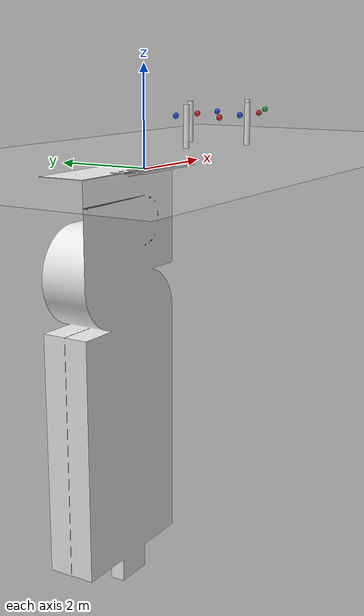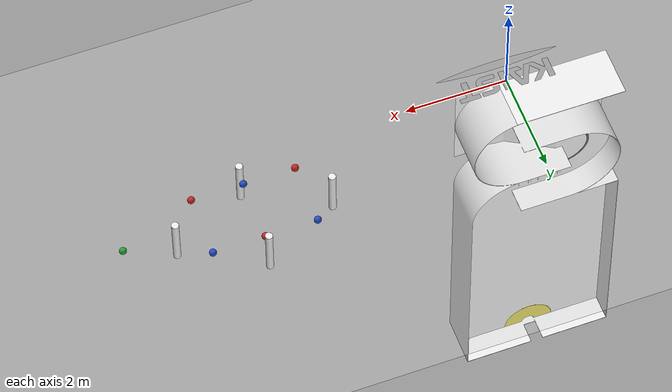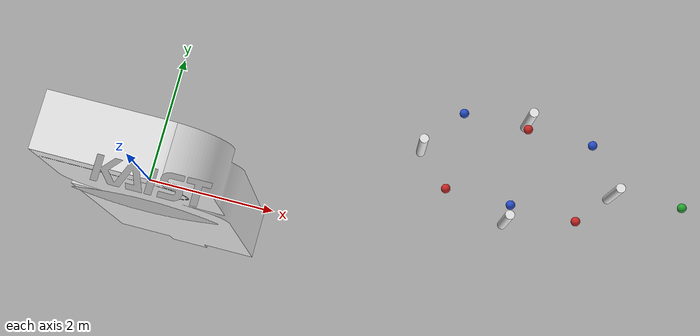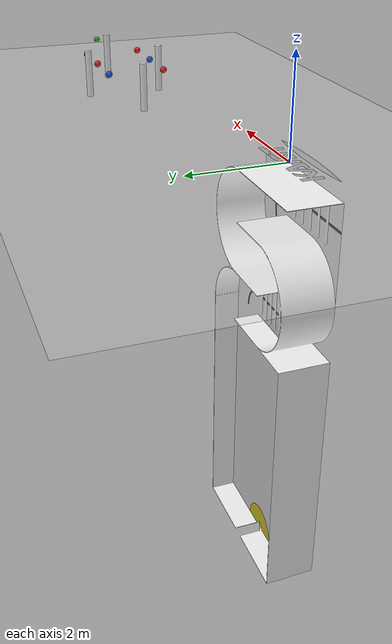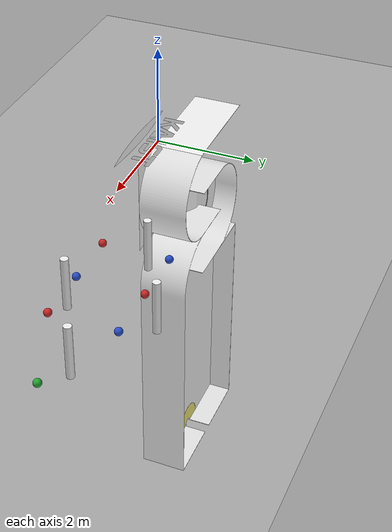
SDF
<sdf version="1.6">
 <world name="default">
  <model name="ground_plane">
   <static>1</static>
   <link name="link">
    <collision name="collision">
     <geometry><plane><normal>0 0 1</normal><size>100 100</size></plane></geometry>
     <surface><friction><ode><mu>100</mu><mu2>50</mu2></ode></friction></surface>
    </collision>
    <visual name="visual">
     <cast_shadows>0</cast_shadows>
     <geometry><plane><normal>0 0 1</normal><size>100 100</size></plane></geometry>
     <material>
      <script><uri>file://media/materials/scripts/gazebo.material</uri><name>Gazebo/Grey</name></script>
     </material>
    </visual>
   </link>
  </model>
  <light name="sun" type="directional">
   <pose>0 0 10 0 -0 0</pose>
   <diffuse>0.8 0.8 0.8 1</diffuse>
   <specular>0.1 0.1 0.1 1</specular>
   <attenuation>
    <range>1000</range>
    <constant>0.9</constant>
    <linear>0.01</linear>
    <quadratic>0.001</quadratic>
   </attenuation>
   <direction>-0.5 0.5 -1</direction>
  </light>
  <model name="field">
   <static>1</static>
   <link name="field">
    <collision name="field_collision">
     <geometry><mesh><uri>file://worlds/map_final.stl</uri><scale>0.1 0.1 0.1</scale></mesh></geometry>
     <max_contacts>100</max_contacts>
     <surface><friction><ode><mu>100</mu><mu2>50</mu2></ode></friction></surface>
    </collision>
    <visual name="field_visual">
     <geometry><mesh><uri>file://worlds/map_final.stl</uri><scale>0.1 0.1 0.1</scale></mesh></geometry>
     <material>
      <script><uri>file://media/materials/scripts/gazebo.material</uri><name>Gazebo/White</name></script>
     </material>
    </visual>
   </link>
  </model>
  <model name="logo">
   <static>1</static>
   <link name="logo">
    <visual name="field_visual">
     <geometry><mesh><uri>file://worlds/kaist_logo.stl</uri><scale>5 5 0.0001</scale></mesh></geometry>
     <material>
      <script><uri>file://media/materials/scripts/gazebo.material</uri><name>Gazebo/Grey</name></script>
     </material>
    </visual>
   </link>
  </model>
  <model name="line">
   <static>1</static>
   <link name="line">
    <visual name="field_visual">
     <geometry><mesh><uri>file://worlds/map_final_onlyline.stl</uri><scale>0.1 0.1 0.1</scale></mesh></geometry>
     <material>
      <script><uri>file://media/materials/scripts/gazebo.material</uri><name>Gazebo/Black</name></script>
     </material>
    </visual>
   </link>
  </model>
  <model name="line2">
   <static>1</static>
   <link name="line">
    <visual name="field_visual">
     <geometry><mesh><uri>file://worlds/map_final_goalline.stl</uri><scale>0.1 0.1 0.1</scale></mesh></geometry>
     <material>
      <script><uri>file://media/materials/scripts/gazebo.material</uri><name>Gazebo/Yellow</name></script>
     </material>
    </visual>
   </link>
  </model>
  <model name="line3">
   <static>1</static>
   <link name="line">
    <visual name="field_visual">
     <geometry>
      <mesh><uri>file://worlds/map_final_goalline_black.stl</uri><scale>0.1 0.1 0.1</scale></mesh>
     </geometry>
     <material>
      <script><uri>file://media/materials/scripts/gazebo.material</uri><name>Gazebo/Black</name></script>
     </material>
    </visual>
   </link>
  </model>
  <model name="red_ball_0">
   <pose>4.5 0.9 0.7 0 -0 0</pose>
   <link name="link">
    <inertial>
     <mass>0.1</mass>
     <inertia><ixx>0.0001</ixx><ixy>0</ixy><ixz>0</ixz><iyy>0.0001</iyy><iyz>0</iyz><izz>0.0001</izz></inertia>
    </inertial>
    <collision name="collision">
     <geometry><cylinder><radius>0.07</radius><length>0.14</length></cylinder></geometry>
    </collision>
    <visual name="visual">
     <geometry><sphere><radius>0.07</radius></sphere></geometry>
     <material>
      <script><name>Gazebo/Red</name><uri>file://media/materials/scripts/gazebo.material</uri></script>
     </material>
    </visual>
   </link>
  </model>
  <model name="red_ball_1">
   <pose>5.5 2.1 0.7 0 -0 0</pose>
   <link name="link">
    <inertial>
     <mass>0.1</mass>
     <inertia><ixx>0.0001</ixx><ixy>0</ixy><ixz>0</ixz><iyy>0.0001</iyy><iyz>0</iyz><izz>0.0001</izz></inertia>
    </inertial>
    <collision name="collision">
     <geometry><cylinder><radius>0.07</radius><length>0.14</length></cylinder></geometry>
    </collision>
    <visual name="visual">
     <geometry><sphere><radius>0.07</radius></sphere></geometry>
     <material>
      <script><name>Gazebo/Red</name><uri>file://media/materials/scripts/gazebo.material</uri></script>
     </material>
    </visual>
   </link>
  </model>
  <model name="red_ball_2">
   <pose>6.5 0.9 0.7 0 -0 0</pose>
   <link name="link">
    <inertial>
     <mass>0.1</mass>
     <inertia><ixx>0.0001</ixx><ixy>0</ixy><ixz>0</ixz><iyy>0.0001</iyy><iyz>0</iyz><izz>0.0001</izz></inertia>
    </inertial>
    <collision name="collision">
     <geometry><cylinder><radius>0.07</radius><length>0.14</length></cylinder></geometry>
    </collision>
    <visual name="visual">
     <geometry><sphere><radius>0.07</radius></sphere></geometry>
     <material>
      <script><name>Gazebo/Red</name><uri>file://media/materials/scripts/gazebo.material</uri></script>
     </material>
    </visual>
   </link>
  </model>
  <model name="blue_ball_0">
   <pose>4.5 2.1 0.7 0 -0 0</pose>
   <link name="link">
    <inertial>
     <mass>0.1</mass>
     <inertia><ixx>0.0001</ixx><ixy>0</ixy><ixz>0</ixz><iyy>0.0001</iyy><iyz>0</iyz><izz>0.0001</izz></inertia>
    </inertial>
    <collision name="collision">
     <geometry><cylinder><radius>0.07</radius><length>0.14</length></cylinder></geometry>
    </collision>
    <visual name="visual">
     <geometry><sphere><radius>0.07</radius></sphere></geometry>
     <material>
      <script><name>Gazebo/Blue</name><uri>file://media/materials/scripts/gazebo.material</uri></script>
     </material>
    </visual>
   </link>
  </model>
  <model name="blue_ball_1">
   <pose>5.5 0.9 0.7 0 -0 0</pose>
   <link name="link">
    <inertial>
     <mass>0.1</mass>
     <inertia><ixx>0.0001</ixx><ixy>0</ixy><ixz>0</ixz><iyy>0.0001</iyy><iyz>0</iyz><izz>0.0001</izz></inertia>
    </inertial>
    <collision name="collision">
     <geometry><cylinder><radius>0.07</radius><length>0.14</length></cylinder></geometry>
    </collision>
    <visual name="visual">
     <geometry><sphere><radius>0.07</radius></sphere></geometry>
     <material>
      <script><name>Gazebo/Blue</name><uri>file://media/materials/scripts/gazebo.material</uri></script>
     </material>
    </visual>
   </link>
  </model>
  <model name="blue_ball_2">
   <pose>6.5 2.1 0.7 0 -0 0</pose>
   <link name="link">
    <inertial>
     <mass>0.1</mass>
     <inertia><ixx>0.0001</ixx><ixy>0</ixy><ixz>0</ixz><iyy>0.0001</iyy><iyz>0</iyz><izz>0.0001</izz></inertia>
    </inertial>
    <collision name="collision">
     <geometry><cylinder><radius>0.07</radius><length>0.14</length></cylinder></geometry>
    </collision>
    <visual name="visual">
     <geometry><sphere><radius>0.07</radius></sphere></geometry>
     <material>
      <script><name>Gazebo/Blue</name><uri>file://media/materials/scripts/gazebo.material</uri></script>
     </material>
    </visual>
   </link>
  </model>
  <model name="goal_0">
   <static>1</static>
   <pose>8 1.5 0.7 0 -0 0</pose>
   <link name="link">
    <visual name="visual">
     <geometry><sphere><radius>0.07</radius></sphere></geometry>
     <material>
      <script><name>Gazebo/Green</name><uri>file://media/materials/scripts/gazebo.material</uri></script>
     </material>
    </visual>
   </link>
  </model>
  <model name="obstacle_0">
   <static>1</static>
   <pose>4 1.5 0.5 0 -0 0</pose>
   <link name="link">
    <collision name="collision">
     <geometry><cylinder><radius>0.07</radius><length>1</length></cylinder></geometry>
    </collision>
    <visual name="visual">
     <geometry><cylinder><radius>0.07</radius><length>1</length></cylinder></geometry>
     <material>
      <script><name>Gazebo/White</name><uri>file://media/materials/scripts/gazebo.material</uri></script>
     </material>
    </visual>
   </link>
  </model>
  <model name="obstacle_1">
   <static>1</static>
   <pose>5.5 0.7 0.5 0 -0 0</pose>
   <link name="link">
    <collision name="collision">
     <geometry><cylinder><radius>0.07</radius><length>1</length></cylinder></geometry>
    </collision>
    <visual name="visual">
     <geometry><cylinder><radius>0.07</radius><length>1</length></cylinder></geometry>
     <material>
      <script><name>Gazebo/White</name><uri>file://media/materials/scripts/gazebo.material</uri></script>
     </material>
    </visual>
   </link>
  </model>
  <model name="obstacle_2">
   <static>1</static>
   <pose>5.5 2.3 0.5 0 -0 0</pose>
   <link name="link">
    <collision name="collision">
     <geometry><cylinder><radius>0.07</radius><length>1</length></cylinder></geometry>
    </collision>
    <visual name="visual">
     <geometry><cylinder><radius>0.07</radius><length>1</length></cylinder></geometry>
     <material>
      <script><name>Gazebo/White</name><uri>file://media/materials/scripts/gazebo.material</uri></script>
     </material>
    </visual>
   </link>
  </model>
  <model name="obstacle_3">
   <static>1</static>
   <pose>7 1.5 0.5 0 -0 0</pose>
   <link name="link">
    <collision name="collision">
     <geometry><cylinder><radius>0.07</radius><length>1</length></cylinder></geometry>
    </collision>
    <visual name="visual">
     <geometry><cylinder><radius>0.07</radius><length>1</length></cylinder></geometry>
     <material>
      <script><name>Gazebo/White</name><uri>file://media/materials/scripts/gazebo.material</uri></script>
     </material>
    </visual>
   </link>
  </model>
  <gravity>0 0 -9.8</gravity>
  <magnetic_field>6e-06 2.3e-05 -4.2e-05</magnetic_field>
  <atmosphere type="adiabatic"/>
  <physics name="default_physics" default="0" type="ode">
   <max_step_size>0.001</max_step_size>
   <real_time_factor>1</real_time_factor>
   <real_time_update_rate>1000</real_time_update_rate>
  </physics>
  <scene><ambient>0.4 0.4 0.4 1</ambient><background>0.7 0.7 0.7 1</background><shadows>1</shadows></scene>
  <spherical_coordinates>
   <surface_model>EARTH_WGS84</surface_model>
   <latitude_deg>0</latitude_deg>
   <longitude_deg>0</longitude_deg>
   <elevation>0</elevation>
   <heading_deg>0</heading_deg>
  </spherical_coordinates>
 </world>
</sdf>
